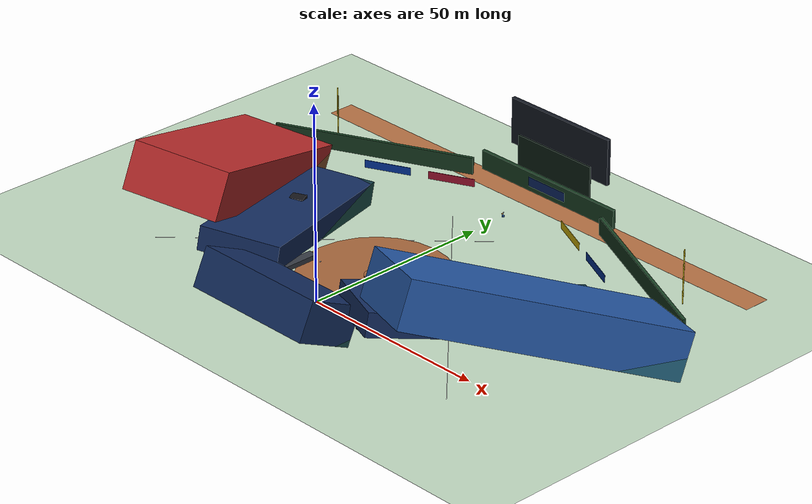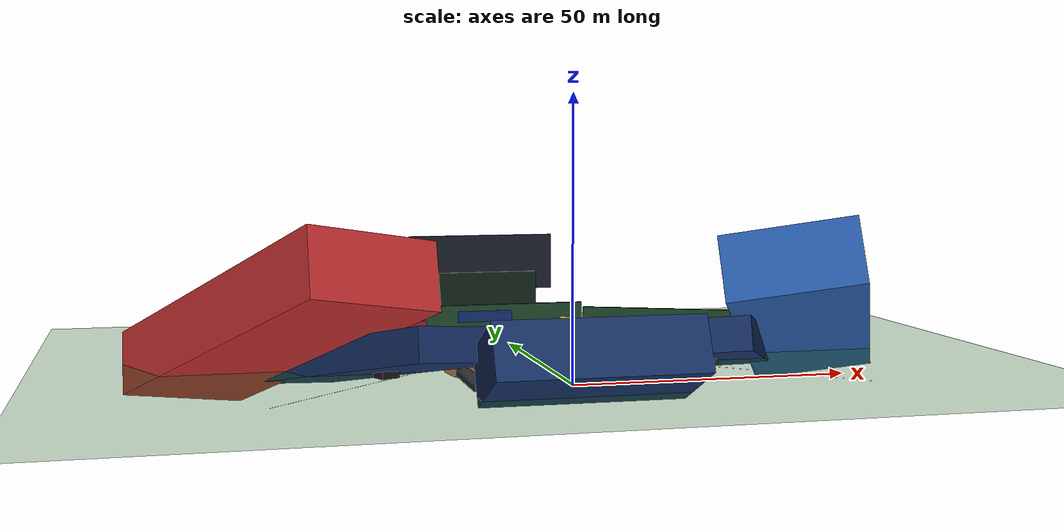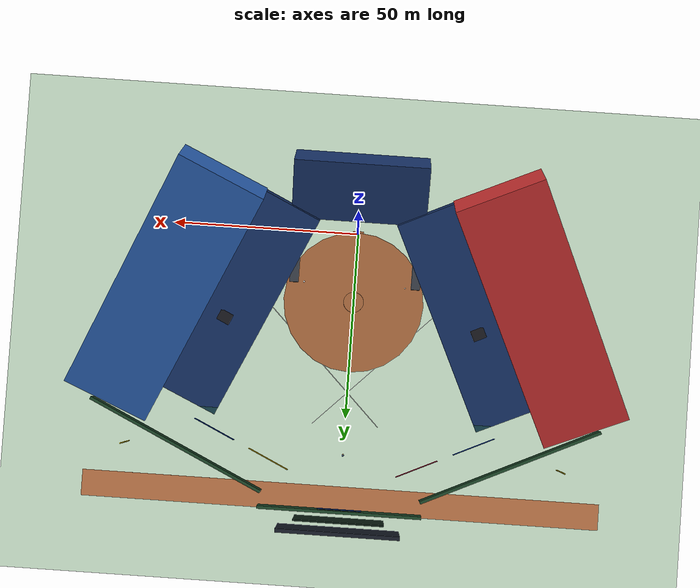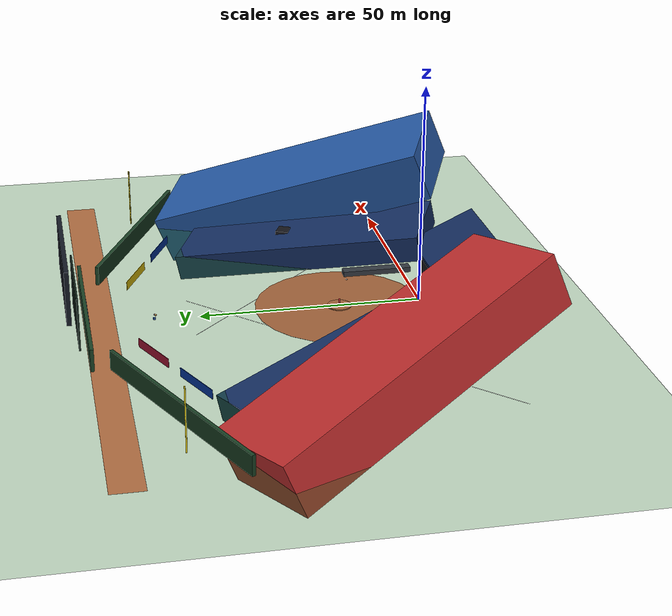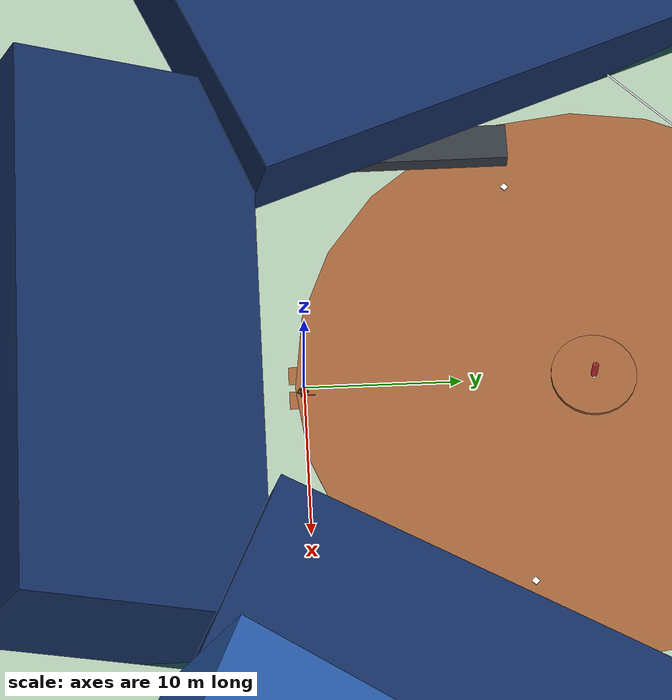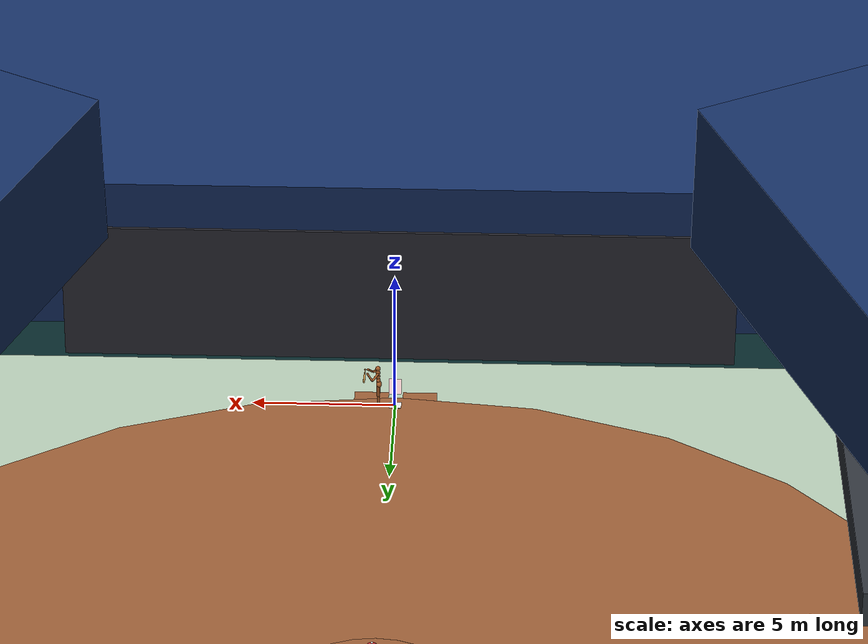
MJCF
<mujoco model="stadium_3d_baseball_pro">
  <compiler angle="degree" coordinate="local" inertiafromgeom="true" />
  <option gravity="0 0 -9.81" timestep="0.002" integrator="RK4">
    <flag constraint="enable" energy="enable" />
  </option>
  <default>
    <joint limited="false" damping="0.01" />
    <geom condim="3" friction="0.5 0.1 0.1" solref="0.004 1" solimp="0.9 0.95 0.001" margin="0.001" />
    <motor ctrlrange="-1 1" ctrllimited="true" />
    <default class="body">
      <geom type="capsule" condim="1" friction=".7" solimp=".9 .99 .003" solref=".015 1" material="body" group="1" />
      <default class="thigh">
        <geom size=".06" />
      </default>
      <default class="shin">
        <geom fromto="0 0 0 0 0 -.3" size=".049" />
      </default>
      <default class="foot">
        <geom size=".027" />
        <default class="foot1">
          <geom fromto="-.07 -.01 0 .14 -.03 0" />
        </default>
        <default class="foot2">
          <geom fromto="-.07 .01 0 .14  .03 0" />
        </default>
      </default>
      <default class="arm_upper">
        <geom size=".04" />
      </default>
      <default class="arm_lower">
        <geom size=".031" />
      </default>
      <default class="hand">
        <geom type="sphere" size=".04" />
      </default>
      <joint type="hinge" damping=".2" stiffness="1" armature=".01" limited="true" solimplimit="0 .99 .01" />
      <default class="joint_big">
        <joint damping="5" stiffness="10" />
        <default class="hip_x">
          <joint range="-30 10" />
        </default>
        <default class="hip_z">
          <joint range="-60 35" />
        </default>
        <default class="hip_y">
          <joint axis="0 1 0" range="-150 20" />
        </default>
        <default class="joint_big_stiff">
          <joint stiffness="20" />
        </default>
      </default>
      <default class="knee">
        <joint pos="0 0 .02" axis="0 -1 0" range="-160 2" />
      </default>
      <default class="ankle">
        <joint range="-50 50" />
        <default class="ankle_y">
          <joint pos="0 0 .08" axis="0 1 0" stiffness="6" />
        </default>
        <default class="ankle_x">
          <joint pos="0 0 .04" stiffness="3" />
        </default>
      </default>
      <default class="shoulder">
        <joint range="-85 60" />
      </default>
      <default class="elbow">
        <joint range="-100 50" stiffness="0" />
      </default>
    </default>
  </default>
  <asset>
    <texture name="sky" type="skybox" builtin="gradient" rgb1="0.3 0.55 0.9" rgb2="0.05 0.12 0.3" width="512" height="512" />
    <texture name="grass_tex" type="2d" builtin="checker" rgb1="0.12 0.44 0.12" rgb2="0.09 0.36 0.09" width="256" height="256" />
    <texture name="dirt_tex" type="2d" builtin="flat" rgb1="0.62 0.38 0.22" width="128" height="128" />
    <texture name="wood_tex" type="2d" builtin="flat" rgb1="0.82 0.62 0.32" width="128" height="128" />
    <material name="grass" texture="grass_tex" texrepeat="35 35" reflectance="0.05" />
    <material name="infield_dirt_mat" texture="dirt_tex" reflectance="0.05" />
    <material name="warning_track_mat" rgba="0.68 0.42 0.25 1" reflectance="0.05" />
    <material name="wood" texture="wood_tex" reflectance="0.3" />
    <material name="ball_mat" rgba="0.98 0.98 0.95 1" reflectance="0.4" />
    <material name="plate_mat" rgba="0.95 0.95 0.95 1" />
    <material name="foul_line_mat" rgba="1 1 1 0.9" />
    <material name="foul_pole_mat" rgba="0.95 0.85 0.1 1" />
    <material name="strike_zone_mat" rgba="1 0.15 0.15 0.22" />
    <material name="fence_mat" rgba="0.1 0.25 0.14 1" />
    <material name="batters_eye_mat" rgba="0.05 0.12 0.08 1" />
    <material name="backstop_mat" rgba="0.15 0.15 0.18 1" />
    <material name="ad_board_samsung" rgba="0.02 0.22 0.65 1" />
    <material name="ad_board_lg" rgba="0.65 0.08 0.2 1" />
    <material name="ad_board_hyundai" rgba="0.05 0.15 0.4 1" />
    <material name="ad_board_kakao" rgba="0.95 0.82 0.05 1" />
    <material name="scoreboard_mat" rgba="0.08 0.1 0.14 1" />
    <material name="scoreboard_screen" rgba="0.15 0.85 0.35 1" />
    <material name="seats_blue" rgba="0.15 0.35 0.65 1" />
    <material name="seats_navy" rgba="0.08 0.18 0.38 1" />
    <material name="seats_red" rgba="0.75 0.18 0.18 1" />
    <material name="concrete_concourse" rgba="0.45 0.48 0.52 1" />
    <material name="entry_tunnel" rgba="0.08 0.08 0.1 1" />
    <material name="dugout_roof" rgba="0.2 0.22 0.25 1" />
    <texture type="skybox" builtin="gradient" rgb1=".3 .5 .7" rgb2="0 0 0" width="32" height="512" />
    <texture name="body" type="cube" builtin="flat" mark="cross" width="128" height="128" rgb1="0.8 0.6 0.4" rgb2="0.8 0.6 0.4" markrgb="1 1 1" />
    <material name="body" texture="body" texuniform="true" rgba="0.8 0.6 .4 1" />
  </asset>
  <worldbody>
    <light name="light_main" pos="0 25 35" dir="0 -0.5 -1" directional="true" diffuse="0.9 0.9 0.95" specular="0.3 0.3 0.3" />
    <light name="light_left" pos="-35 50 30" dir="0.5 -0.5 -1" directional="true" diffuse="0.6 0.6 0.65" />
    <light name="light_right" pos="35 50 30" dir="-0.5 -0.5 -1" directional="true" diffuse="0.6 0.6 0.65" />
    <geom name="outfield_grass" type="plane" size="130 130 0.1" pos="0 35 0" material="grass" />
    <geom name="pitcher_mound" type="cylinder" size="2.74 0.25" pos="0 18.44 0" material="infield_dirt_mat" />
    <geom name="pitcher_rubber" type="box" size="0.30 0.07 0.02" pos="0 18.44 0.26" material="plate_mat" />
    <geom name="path_home_1st" type="box" size="0.9 9.7 0.003" pos="9.7 9.7 0.003" euler="0 0 -45" material="infield_dirt_mat" />
    <geom name="path_home_3rd" type="box" size="0.9 9.7 0.003" pos="-9.7 9.7 0.003" euler="0 0 45" material="infield_dirt_mat" />
    <geom name="path_1st_2nd" type="box" size="0.9 9.7 0.003" pos="9.7 27.7 0.003" euler="0 0 45" material="infield_dirt_mat" />
    <geom name="path_3rd_2nd" type="box" size="0.9 9.7 0.003" pos="-9.7 27.7 0.003" euler="0 0 -45" material="infield_dirt_mat" />
    <geom name="infield_skin_dirt" type="cylinder" size="19.0 0.004" pos="0 18.44 0.004" material="infield_dirt_mat" />
    <geom name="home_plate" type="box" size="0.216 0.216 0.01" pos="0 0 0.005" material="plate_mat" />
    <geom name="left_batter_box" type="box" size="0.6 1.2 0.002" pos="-0.85 0.25 0.002" material="infield_dirt_mat" />
    <geom name="right_batter_box" type="box" size="0.6 1.2 0.002" pos="0.85 0.25 0.002" material="infield_dirt_mat" />
    <geom name="strike_zone_box" type="box" size="0.216 0.01 0.30" pos="0 0 0.75" material="strike_zone_mat" contype="0" conaffinity="0" />
    <geom name="base_1st" type="box" size="0.19 0.19 0.04" pos="13.72 13.72 0.04" euler="0 0 45" material="plate_mat" />
    <geom name="base_2nd" type="box" size="0.19 0.19 0.04" pos="0 27.43 0.04" euler="0 0 45" material="plate_mat" />
    <geom name="base_3rd" type="box" size="0.19 0.19 0.04" pos="-13.72 13.72 0.04" euler="0 0 45" material="plate_mat" />
    <geom name="dugout_1st_roof" type="box" size="1.2 8.0 0.6" pos="16.5 6.0 0.6" material="dugout_roof" />
    <geom name="dugout_3rd_roof" type="box" size="1.2 8.0 0.6" pos="-16.5 6.0 0.6" material="dugout_roof" />
    <geom name="warning_track" type="box" size="70 3.5 0.004" pos="0 72 0.004" material="warning_track_mat" />
    <geom name="fence_left_wall" type="box" size="26 0.4 2.2" pos="-45 60 2.2" euler="0 0 25" material="fence_mat" />
    <geom name="fence_center_wall" type="box" size="22 0.4 2.5" pos="0 75 2.5" material="fence_mat" />
    <geom name="fence_right_wall" type="box" size="26 0.4 2.2" pos="45 60 2.2" euler="0 0 -25" material="fence_mat" />
    <geom name="ad_samsung" type="box" size="6.0 0.05 1.0" pos="-35 55.2 2.2" euler="0 0 25" material="ad_board_samsung" />
    <geom name="ad_lg" type="box" size="6.0 0.05 1.0" pos="-20 62.2 2.2" euler="0 0 25" material="ad_board_lg" />
    <geom name="ad_hyundai" type="box" size="6.0 0.05 1.2" pos="0 74.5 2.5" material="ad_board_hyundai" />
    <geom name="ad_kakao" type="box" size="6.0 0.05 1.0" pos="20 62.2 2.2" euler="0 0 -25" material="ad_board_kakao" />
    <geom name="ad_sponsor_right" type="box" size="6.0 0.05 1.0" pos="35 55.2 2.2" euler="0 0 -25" material="ad_board_samsung" />
    <geom name="batters_eye" type="box" size="12 0.2 6.0" pos="0 77 6.0" material="batters_eye_mat" />
    <geom name="jumbo_scoreboard" type="box" size="16 0.5 6.0" pos="0 79 14.0" material="scoreboard_mat" />
    <geom name="scoreboard_display" type="box" size="14 0.05 4.5" pos="0 78.7 14.0" material="scoreboard_screen" />
    <geom name="foul_pole_left" type="cylinder" size="0.15 7.0" pos="-58 60 7.0" material="foul_pole_mat" />
    <geom name="foul_pole_right" type="cylinder" size="0.15 7.0" pos="58 60 7.0" material="foul_pole_mat" />
    <geom name="foul_line_left" type="box" size="0.06 43 0.003" pos="-21.5 21.5 0.003" euler="0 0 -45" material="foul_line_mat" contype="0" conaffinity="0" />
    <geom name="foul_line_right" type="box" size="0.06 43 0.003" pos="21.5 21.5 0.003" euler="0 0 45" material="foul_line_mat" contype="0" conaffinity="0" />
    <geom name="backstop_wall" type="box" size="12 0.5 2.5" pos="0 -4.0 2.5" material="backstop_mat" />
    <geom name="stand_1st_lower" type="box" size="10 30 3.0" pos="32 20 3.0" euler="-12 0 -25" material="seats_navy" />
    <geom name="stand_1st_upper" type="box" size="12 35 6.0" pos="50 18 10.0" euler="-22 0 -25" material="seats_blue" />
    <geom name="portal_1st_1" type="box" size="1.8 1.5 2.2" pos="30 15 2.2" euler="0 0 -25" material="entry_tunnel" />
    <geom name="portal_1st_2" type="box" size="1.8 1.5 2.2" pos="34 25 3.2" euler="0 0 -25" material="entry_tunnel" />
    <geom name="stand_3rd_lower" type="box" size="10 30 3.0" pos="-32 20 3.0" euler="-12 0 25" material="seats_navy" />
    <geom name="stand_3rd_upper" type="box" size="12 35 6.0" pos="-50 18 10.0" euler="-22 0 25" material="seats_red" />
    <geom name="portal_3rd_1" type="box" size="1.8 1.5 2.2" pos="-30 15 2.2" euler="0 0 25" material="entry_tunnel" />
    <geom name="portal_3rd_2" type="box" size="1.8 1.5 2.2" pos="-34 25 3.2" euler="0 0 25" material="entry_tunnel" />
    <geom name="stand_home_grand" type="box" size="18 8.0 5.0" pos="0 -12 6.0" euler="-25 0 0" material="seats_navy" />
    <geom name="portal_home_center" type="box" size="2.5 1.5 2.5" pos="0 -10 3.5" material="entry_tunnel" />
    <body name="pitcher_placeholder" pos="0 18.44 0">
      <geom type="capsule" size="0.2 0.8" pos="0 0 0.8" material="seats_red" />
    </body>
    <camera name="pitcher_cam" pos="0 20.0 2.0" euler="90 0 180" fovy="60" />
    <camera name="catcher_cam" pos="0 -2.0 1.2" euler="90 0 0" fovy="60" />
    <camera name="broadcaster_cam" pos="0 -10.0 8.0" euler="65 0 0" fovy="50" />
    <camera name="top_down_cam" pos="0 9.0 25.0" euler="0 0 0" fovy="70" />
    <body name="baseball" pos="0 18.44 1.8">
      <freejoint name="ball_joint" />
      <geom name="ball_geom" type="sphere" size="0.037" mass="0.145" material="ball_mat" condim="3" friction="0.3 0.05 0.05" solref="0.015 1" />
    </body>
    <body name="fielder_cf" pos="0 60 0.5">
      <joint name="cf_slide_x" type="slide" axis="1 0 0" damping="50" armature="1.0" />
      <joint name="cf_slide_y" type="slide" axis="0 1 0" damping="50" armature="1.0" />
      <geom name="cf_base" type="cylinder" size="0.3 0.2" material="seats_blue" mass="30.0" contype="0" conaffinity="0" />
      <geom name="cf_head" type="sphere" size="0.15" pos="0 0 1.0" material="plate_mat" mass="5.0" contype="0" conaffinity="0" />
      <body name="cf_arm" pos="0 -0.3 0.8">
        <joint name="cf_arm_pitch" type="hinge" axis="1 0 0" range="-45 45" damping="2.0" armature="0.1" />
        <geom name="cf_glove" type="sphere" size="0.2" material="wood" mass="2.0" condim="3" friction="1.0 0.5 0.5" />
      </body>
    </body>
    <body name="torso" pos="0.6 -0.1 1.2" childclass="body">
      <camera name="back" pos="-3 0 1" xyaxes="0 -1 0 1 0 2" mode="trackcom" />
      <camera name="side" pos="0 -3 1" xyaxes="1 0 0 0 1 2" mode="trackcom" />
      <geom name="torso" fromto="0 -.07 0 0 .07 0" size=".07" />
      <geom name="waist_upper" fromto="-.01 -.06 -.12 -.01 .06 -.12" size=".06" />
      <body name="head" pos="0 0 .19">
        <geom name="head" type="sphere" size=".09" />
        <camera name="batter_cam" pos="0.1 0 0" euler="90 0 90" fovy="75" />
      </body>
      <body name="waist_lower" pos="-.01 0 -.26">
        <geom name="waist_lower" fromto="0 -.06 0 0 .06 0" size=".06" />
        <joint name="abdomen_z" pos="0 0 .065" axis="0 0 1" range="-45 45" class="joint_big_stiff" />
        <joint name="abdomen_y" pos="0 0 .065" axis="0 1 0" range="-75 30" class="joint_big" />
        <body name="pelvis" pos="0 0 -.165">
          <joint name="abdomen_x" pos="0 0 .1" axis="1 0 0" range="-35 35" class="joint_big" />
          <geom name="butt" fromto="-.02 -.07 0 -.02 .07 0" size=".09" />
          <body name="thigh_right" pos="0 -.1 -.04">
            <joint name="hip_x_right" axis="1 0 0" class="hip_x" />
            <joint name="hip_z_right" axis="0 0 1" class="hip_z" />
            <joint name="hip_y_right" class="hip_y" />
            <geom name="thigh_right" fromto="0 0 0 0 .01 -.34" class="thigh" />
            <body name="shin_right" pos="0 .01 -.4">
              <joint name="knee_right" class="knee" />
              <geom name="shin_right" class="shin" />
              <body name="foot_right" pos="0 0 -.39">
                <joint name="ankle_y_right" class="ankle_y" />
                <joint name="ankle_x_right" class="ankle_x" axis="1 0 .5" />
                <geom name="foot1_right" class="foot1" />
                <geom name="foot2_right" class="foot2" />
              </body>
            </body>
          </body>
          <body name="thigh_left" pos="0 .1 -.04">
            <joint name="hip_x_left" axis="-1 0 0" class="hip_x" />
            <joint name="hip_z_left" axis="0 0 -1" class="hip_z" />
            <joint name="hip_y_left" class="hip_y" />
            <geom name="thigh_left" fromto="0 0 0 0 -.01 -.34" class="thigh" />
            <body name="shin_left" pos="0 -.01 -.4">
              <joint name="knee_left" class="knee" />
              <geom name="shin_left" fromto="0 0 0 0 0 -.3" class="shin" />
              <body name="foot_left" pos="0 0 -.39">
                <joint name="ankle_y_left" class="ankle_y" />
                <joint name="ankle_x_left" class="ankle_x" axis="-1 0 -.5" />
                <geom name="foot1_left" class="foot1" />
                <geom name="foot2_left" class="foot2" />
              </body>
            </body>
          </body>
        </body>
      </body>
      <body name="upper_arm_right" pos="0 -.17 .06">
        <joint name="shoulder1_right" axis="2 1 1" class="shoulder" />
        <joint name="shoulder2_right" axis="0 -1 1" class="shoulder" />
        <geom name="upper_arm_right" fromto="0 0 0 .16 -.16 -.16" class="arm_upper" />
        <body name="lower_arm_right" pos=".18 -.18 -.18">
          <joint name="elbow_right" axis="0 -1 1" class="elbow" />
          <geom name="lower_arm_right" fromto=".01 .01 .01 .17 .17 .17" class="arm_lower" />
          <body name="hand_right" pos=".18 .18 .18">
            <geom name="hand_right" zaxis="1 1 1" class="hand" />
            <body name="bat" pos="0.1 0 0" euler="0 90 0">
              <geom name="bat_knob" type="cylinder" size="0.025 0.015" pos="0 0.015 0" euler="90 0 0" material="wood" mass="0.05" />
              <geom name="bat_handle" type="cylinder" size="0.014 0.2" pos="0 0.2 0" euler="90 0 0" material="wood" mass="0.25" />
              <geom name="bat_taper" type="capsule" size="0.024 0.1" pos="0 0.45 0" euler="90 0 0" material="wood" mass="0.2" />
              <geom name="bat_barrel" type="cylinder" size="0.034 0.25" pos="0 0.675 0" euler="90 0 0" material="wood" mass="0.5" condim="3" friction="0.6 0.1 0.1" solref="0.015 1" />
            </body>
          </body>
        </body>
      </body>
      <body name="upper_arm_left" pos="0 .17 .06">
        <joint name="shoulder1_left" axis="-2 1 -1" class="shoulder" />
        <joint name="shoulder2_left" axis="0 -1 -1" class="shoulder" />
        <geom name="upper_arm_left" fromto="0 0 0 .16 .16 -.16" class="arm_upper" />
        <body name="lower_arm_left" pos=".18 .18 -.18">
          <joint name="elbow_left" axis="0 -1 -1" class="elbow" />
          <geom name="lower_arm_left" fromto=".01 -.01 .01 .17 -.17 .17" class="arm_lower" />
          <body name="hand_left" pos=".18 -.18 .18">
            <geom name="hand_left" zaxis="1 -1 1" class="hand" />
          </body>
        </body>
      </body>
    </body>
  </worldbody>
  <actuator>
    <motor joint="cf_slide_x" ctrlrange="-200 200" gear="1.0" />
    <motor joint="cf_slide_y" ctrlrange="-200 200" gear="1.0" />
    <motor joint="cf_arm_pitch" ctrlrange="-50 50" gear="1.0" />
    <motor name="abdomen_z" gear="40" joint="abdomen_z" />
    <motor name="abdomen_y" gear="40" joint="abdomen_y" />
    <motor name="abdomen_x" gear="40" joint="abdomen_x" />
    <motor name="hip_x_right" gear="40" joint="hip_x_right" />
    <motor name="hip_z_right" gear="40" joint="hip_z_right" />
    <motor name="hip_y_right" gear="120" joint="hip_y_right" />
    <motor name="knee_right" gear="80" joint="knee_right" />
    <motor name="ankle_y_right" gear="20" joint="ankle_y_right" />
    <motor name="ankle_x_right" gear="20" joint="ankle_x_right" />
    <motor name="hip_x_left" gear="40" joint="hip_x_left" />
    <motor name="hip_z_left" gear="40" joint="hip_z_left" />
    <motor name="hip_y_left" gear="120" joint="hip_y_left" />
    <motor name="knee_left" gear="80" joint="knee_left" />
    <motor name="ankle_y_left" gear="20" joint="ankle_y_left" />
    <motor name="ankle_x_left" gear="20" joint="ankle_x_left" />
    <motor name="shoulder1_right" gear="20" joint="shoulder1_right" />
    <motor name="shoulder2_right" gear="20" joint="shoulder2_right" />
    <motor name="elbow_right" gear="40" joint="elbow_right" />
    <motor name="shoulder1_left" gear="20" joint="shoulder1_left" />
    <motor name="shoulder2_left" gear="20" joint="shoulder2_left" />
    <motor name="elbow_left" gear="40" joint="elbow_left" />
  </actuator>
  <contact>
    <exclude body1="waist_lower" body2="thigh_right" />
    <exclude body1="waist_lower" body2="thigh_left" />
  </contact>
  <tendon>
    <fixed name="hamstring_right" limited="true" range="-0.3 2">
      <joint joint="hip_y_right" coef=".5" />
      <joint joint="knee_right" coef="-.5" />
    </fixed>
    <fixed name="hamstring_left" limited="true" range="-0.3 2">
      <joint joint="hip_y_left" coef=".5" />
      <joint joint="knee_left" coef="-.5" />
    </fixed>
  </tendon>
</mujoco>
